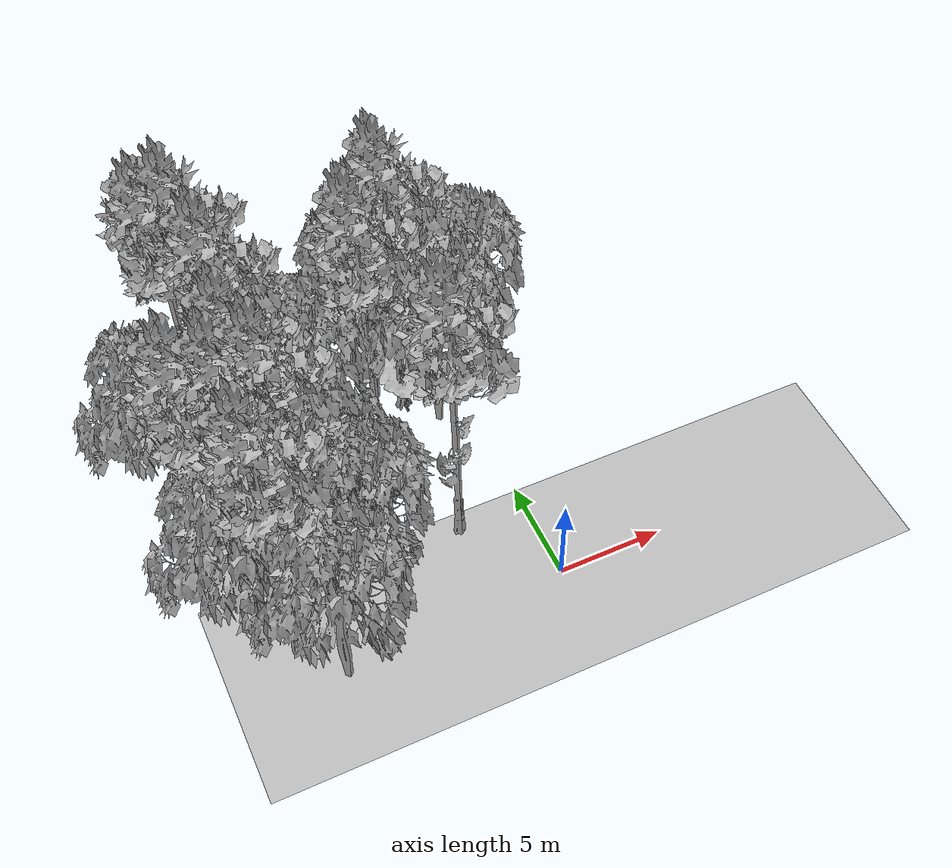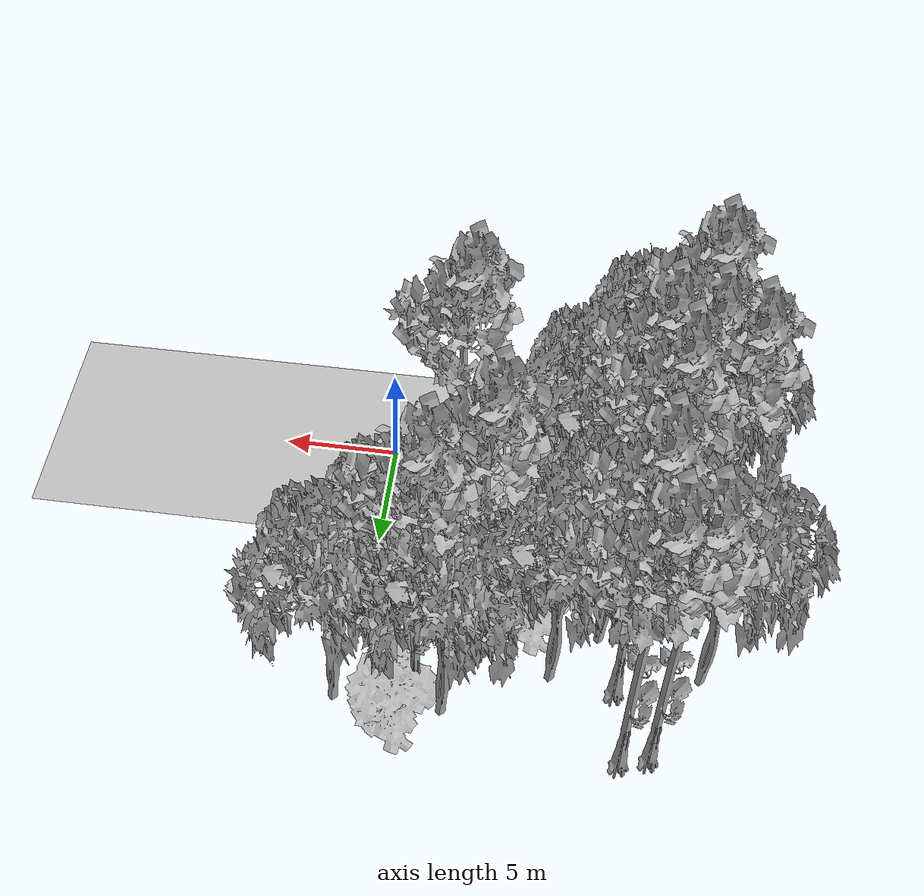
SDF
<sdf version="1.7">
 <world name="default">
  <model name="ground_plane">
   <static>1</static>
   <link name="link">
    <collision name="collision">
     <pose>-50 0 0 0 -0 0</pose>
     <geometry><plane><normal>0 0 1</normal><size>100 100</size></plane></geometry>
     <surface><contact><ode><min_depth>0.01</min_depth><max_vel>0</max_vel></ode></contact></surface>
    </collision>
    <visual name="grass">
     <cast_shadows>0</cast_shadows>
     <geometry>
      <mesh>
       <scale>0.5814285714285714 0.18142857142857144 0.1</scale>
       <uri>file://grass_plane/meshes/grass_plane.dae</uri>
      </mesh>
     </geometry>
    </visual>
   </link>
  </model>
  <model name="Tree 17">
   <static>1</static>
   <pose>-1.5464547842415897 10.502749499127287 0 1.57079 -0 0</pose>
   <link name="link">
    <collision name="collision">
     <geometry><mesh><scale>3.5 5 3.5</scale><uri>model://tree_2/meshes/tree_2.obj</uri></mesh></geometry>
    </collision>
    <visual name="visual">
     <geometry><mesh><scale>3.5 5 3.5</scale><uri>model://tree_2/meshes/tree_2.obj</uri></mesh></geometry>
    </visual>
   </link>
  </model>
  <model name="Tree 44">
   <static>1</static>
   <pose>-6.870772173710499 8.110817966984158 0 1.57079 -0 0</pose>
   <link name="link">
    <collision name="collision">
     <geometry><mesh><scale>4 2.5 4</scale><uri>model://tree_1/meshes/tree_1.obj</uri></mesh></geometry>
    </collision>
    <visual name="visual">
     <geometry><mesh><scale>4 2.5 4</scale><uri>model://tree_1/meshes/tree_1.obj</uri></mesh></geometry>
    </visual>
   </link>
  </model>
  <model name="Tree 84">
   <static>1</static>
   <pose>-10.97951866770515 14.462348237097107 0 1.57079 -0 0</pose>
   <link name="link">
    <collision name="collision">
     <geometry><mesh><scale>3.5 5 3.5</scale><uri>model://tree_9/meshes/tree_9.obj</uri></mesh></geometry>
    </collision>
    <visual name="visual">
     <geometry><mesh><scale>3.5 5 3.5</scale><uri>model://tree_9/meshes/tree_9.obj</uri></mesh></geometry>
    </visual>
   </link>
  </model>
  <model name="Tree 87">
   <static>1</static>
   <pose>-10.615403944756977 11.232929640722332 0 1.57079 -0 0</pose>
   <link name="link">
    <collision name="collision">
     <geometry><mesh><scale>3.5 5 3.5</scale><uri>model://tree_9/meshes/tree_9.obj</uri></mesh></geometry>
    </collision>
    <visual name="visual">
     <geometry><mesh><scale>3.5 5 3.5</scale><uri>model://tree_9/meshes/tree_9.obj</uri></mesh></geometry>
    </visual>
   </link>
  </model>
  <model name="Tree 91">
   <static>1</static>
   <pose>-12.226139793623254 1.3104522227002384 0 1.57079 -0 0</pose>
   <link name="link">
    <collision name="collision">
     <geometry><mesh><scale>3.5 5 3.5</scale><uri>model://tree_9/meshes/tree_9.obj</uri></mesh></geometry>
    </collision>
    <visual name="visual">
     <geometry><mesh><scale>3.5 5 3.5</scale><uri>model://tree_9/meshes/tree_9.obj</uri></mesh></geometry>
    </visual>
   </link>
  </model>
  <model name="Tree 103">
   <static>1</static>
   <pose>-11.103111964955303 6.880461989653057 0 1.57079 -0 0</pose>
   <link name="link">
    <collision name="collision">
     <geometry><mesh><scale>3.5 5 3.5</scale><uri>model://tree_9/meshes/tree_9.obj</uri></mesh></geometry>
    </collision>
    <visual name="visual">
     <geometry><mesh><scale>3.5 5 3.5</scale><uri>model://tree_9/meshes/tree_9.obj</uri></mesh></geometry>
    </visual>
   </link>
  </model>
  <model name="Tree 104">
   <static>1</static>
   <pose>-1.9587223394601239 13.362777942094304 0 1.57079 -0 0</pose>
   <link name="link">
    <collision name="collision">
     <geometry><mesh><scale>4 2.5 4</scale><uri>model://tree_1/meshes/tree_1.obj</uri></mesh></geometry>
    </collision>
    <visual name="visual">
     <geometry><mesh><scale>4 2.5 4</scale><uri>model://tree_1/meshes/tree_1.obj</uri></mesh></geometry>
    </visual>
   </link>
  </model>
  <model name="Tree 115">
   <static>1</static>
   <pose>-9.150794074007784 4.38582877669085 0 1.57079 -0 0</pose>
   <link name="link">
    <collision name="collision">
     <geometry><mesh><scale>3.5 5 3.5</scale><uri>model://tree_2/meshes/tree_2.obj</uri></mesh></geometry>
    </collision>
    <visual name="visual">
     <geometry><mesh><scale>3.5 5 3.5</scale><uri>model://tree_2/meshes/tree_2.obj</uri></mesh></geometry>
    </visual>
   </link>
  </model>
  <model name="Tree 124">
   <static>1</static>
   <pose>-8.02809933842314 10.93096286586033 0 1.57079 -0 0</pose>
   <link name="link">
    <collision name="collision">
     <geometry><mesh><scale>3.5 5 3.5</scale><uri>model://tree_2/meshes/tree_2.obj</uri></mesh></geometry>
    </collision>
    <visual name="visual">
     <geometry><mesh><scale>3.5 5 3.5</scale><uri>model://tree_2/meshes/tree_2.obj</uri></mesh></geometry>
    </visual>
   </link>
  </model>
  <model name="Tree 126">
   <static>1</static>
   <pose>-9.89404448236153 8.795572836143705 0 1.57079 -0 0</pose>
   <link name="link">
    <collision name="collision">
     <geometry><mesh><scale>3.5 5 3.5</scale><uri>model://tree_2/meshes/tree_2.obj</uri></mesh></geometry>
    </collision>
    <visual name="visual">
     <geometry><mesh><scale>3.5 5 3.5</scale><uri>model://tree_2/meshes/tree_2.obj</uri></mesh></geometry>
    </visual>
   </link>
  </model>
  <model name="Tree 128">
   <static>1</static>
   <pose>-13.551844135564366 5.416586937286702 0 1.57079 -0 0</pose>
   <link name="link">
    <collision name="collision">
     <geometry><mesh><scale>3.5 5 3.5</scale><uri>model://tree_9/meshes/tree_9.obj</uri></mesh></geometry>
    </collision>
    <visual name="visual">
     <geometry><mesh><scale>3.5 5 3.5</scale><uri>model://tree_9/meshes/tree_9.obj</uri></mesh></geometry>
    </visual>
   </link>
  </model>
  <model name="Tree 142">
   <static>1</static>
   <pose>-3.8506000624556194 13.127868423834428 0 1.57079 -0 0</pose>
   <link name="link">
    <collision name="collision">
     <geometry><mesh><scale>3.5 5 3.5</scale><uri>model://tree_2/meshes/tree_2.obj</uri></mesh></geometry>
    </collision>
    <visual name="visual">
     <geometry><mesh><scale>3.5 5 3.5</scale><uri>model://tree_2/meshes/tree_2.obj</uri></mesh></geometry>
    </visual>
   </link>
  </model>
  <model name="Tree 143">
   <static>1</static>
   <pose>-10.528977409529773 8.791694518805201 0 1.57079 -0 0</pose>
   <link name="link">
    <collision name="collision">
     <geometry><mesh><scale>3.5 5 3.5</scale><uri>model://tree_2/meshes/tree_2.obj</uri></mesh></geometry>
    </collision>
    <visual name="visual">
     <geometry><mesh><scale>3.5 5 3.5</scale><uri>model://tree_2/meshes/tree_2.obj</uri></mesh></geometry>
    </visual>
   </link>
  </model>
  <model name="Tree 151">
   <static>1</static>
   <pose>-3.2789178910239585 4.008805497649302 0 1.57079 -0 0</pose>
   <link name="link">
    <collision name="collision">
     <geometry><mesh><scale>3.5 5 3.5</scale><uri>model://tree_9/meshes/tree_9.obj</uri></mesh></geometry>
    </collision>
    <visual name="visual">
     <geometry><mesh><scale>3.5 5 3.5</scale><uri>model://tree_9/meshes/tree_9.obj</uri></mesh></geometry>
    </visual>
   </link>
  </model>
  <model name="Tree 169">
   <static>1</static>
   <pose>-2.616836531246122 12.421207624163 0 1.57079 -0 0</pose>
   <link name="link">
    <collision name="collision">
     <geometry><mesh><scale>3.5 5 3.5</scale><uri>model://tree_9/meshes/tree_9.obj</uri></mesh></geometry>
    </collision>
    <visual name="visual">
     <geometry><mesh><scale>3.5 5 3.5</scale><uri>model://tree_9/meshes/tree_9.obj</uri></mesh></geometry>
    </visual>
   </link>
  </model>
  <model name="Tree 170">
   <static>1</static>
   <pose>-13.37946469892853 2.4523876045811583 0 1.57079 -0 0</pose>
   <link name="link">
    <collision name="collision">
     <geometry><mesh><scale>3.5 5 3.5</scale><uri>model://tree_2/meshes/tree_2.obj</uri></mesh></geometry>
    </collision>
    <visual name="visual">
     <geometry><mesh><scale>3.5 5 3.5</scale><uri>model://tree_2/meshes/tree_2.obj</uri></mesh></geometry>
    </visual>
   </link>
  </model>
  <model name="Tree 177">
   <static>1</static>
   <pose>-8.524470291277773 2.662947315719194 0 1.57079 -0 0</pose>
   <link name="link">
    <collision name="collision">
     <geometry><mesh><scale>3.5 5 3.5</scale><uri>model://tree_2/meshes/tree_2.obj</uri></mesh></geometry>
    </collision>
    <visual name="visual">
     <geometry><mesh><scale>3.5 5 3.5</scale><uri>model://tree_2/meshes/tree_2.obj</uri></mesh></geometry>
    </visual>
   </link>
  </model>
  <model name="Tree 224">
   <static>1</static>
   <pose>-14.101716598692128 10.267830697810204 0 1.57079 -0 0</pose>
   <link name="link">
    <collision name="collision">
     <geometry><mesh><scale>3.5 5 3.5</scale><uri>model://tree_2/meshes/tree_2.obj</uri></mesh></geometry>
    </collision>
    <visual name="visual">
     <geometry><mesh><scale>3.5 5 3.5</scale><uri>model://tree_2/meshes/tree_2.obj</uri></mesh></geometry>
    </visual>
   </link>
  </model>
  <model name="Tree 236">
   <static>1</static>
   <pose>-4.824153772444397 9.986588598234455 0 1.57079 -0 0</pose>
   <link name="link">
    <collision name="collision">
     <geometry><mesh><scale>3.5 5 3.5</scale><uri>model://tree_9/meshes/tree_9.obj</uri></mesh></geometry>
    </collision>
    <visual name="visual">
     <geometry><mesh><scale>3.5 5 3.5</scale><uri>model://tree_9/meshes/tree_9.obj</uri></mesh></geometry>
    </visual>
   </link>
  </model>
  <model name="Tree 240">
   <static>1</static>
   <pose>-12.091854316914308 4.882756758990194 0 1.57079 -0 0</pose>
   <link name="link">
    <collision name="collision">
     <geometry><mesh><scale>3.5 5 3.5</scale><uri>model://tree_9/meshes/tree_9.obj</uri></mesh></geometry>
    </collision>
    <visual name="visual">
     <geometry><mesh><scale>3.5 5 3.5</scale><uri>model://tree_9/meshes/tree_9.obj</uri></mesh></geometry>
    </visual>
   </link>
  </model>
  <model name="Tree 243">
   <static>1</static>
   <pose>-10.734534412765477 -0.7334691914818361 0 1.57079 -0 0</pose>
   <link name="link">
    <collision name="collision">
     <geometry><mesh><scale>3.5 5 3.5</scale><uri>model://tree_2/meshes/tree_2.obj</uri></mesh></geometry>
    </collision>
    <visual name="visual">
     <geometry><mesh><scale>3.5 5 3.5</scale><uri>model://tree_2/meshes/tree_2.obj</uri></mesh></geometry>
    </visual>
   </link>
  </model>
  <model name="Tree 250">
   <static>1</static>
   <pose>0.5279444278425842 13.019041571614803 0 1.57079 -0 0</pose>
   <link name="link">
    <collision name="collision">
     <geometry><mesh><scale>3.5 5 3.5</scale><uri>model://tree_2/meshes/tree_2.obj</uri></mesh></geometry>
    </collision>
    <visual name="visual">
     <geometry><mesh><scale>3.5 5 3.5</scale><uri>model://tree_2/meshes/tree_2.obj</uri></mesh></geometry>
    </visual>
   </link>
  </model>
  <model name="Tree 279">
   <static>1</static>
   <pose>-11.416808171402458 4.2040541555309865 0 1.57079 -0 0</pose>
   <link name="link">
    <collision name="collision">
     <geometry><mesh><scale>3.5 5 3.5</scale><uri>model://tree_2/meshes/tree_2.obj</uri></mesh></geometry>
    </collision>
    <visual name="visual">
     <geometry><mesh><scale>3.5 5 3.5</scale><uri>model://tree_2/meshes/tree_2.obj</uri></mesh></geometry>
    </visual>
   </link>
  </model>
  <model name="Tree 293">
   <static>1</static>
   <pose>-12.138942435394242 14.116221465858374 0 1.57079 -0 0</pose>
   <link name="link">
    <collision name="collision">
     <geometry><mesh><scale>3.5 5 3.5</scale><uri>model://tree_9/meshes/tree_9.obj</uri></mesh></geometry>
    </collision>
    <visual name="visual">
     <geometry><mesh><scale>3.5 5 3.5</scale><uri>model://tree_9/meshes/tree_9.obj</uri></mesh></geometry>
    </visual>
   </link>
  </model>
  <model name="Tree 297">
   <static>1</static>
   <pose>-10.48295523860098 4.928411884152723 0 1.57079 -0 0</pose>
   <link name="link">
    <collision name="collision">
     <geometry><mesh><scale>3.5 5 3.5</scale><uri>model://tree_9/meshes/tree_9.obj</uri></mesh></geometry>
    </collision>
    <visual name="visual">
     <geometry><mesh><scale>3.5 5 3.5</scale><uri>model://tree_9/meshes/tree_9.obj</uri></mesh></geometry>
    </visual>
   </link>
  </model>
 </world>
</sdf>
